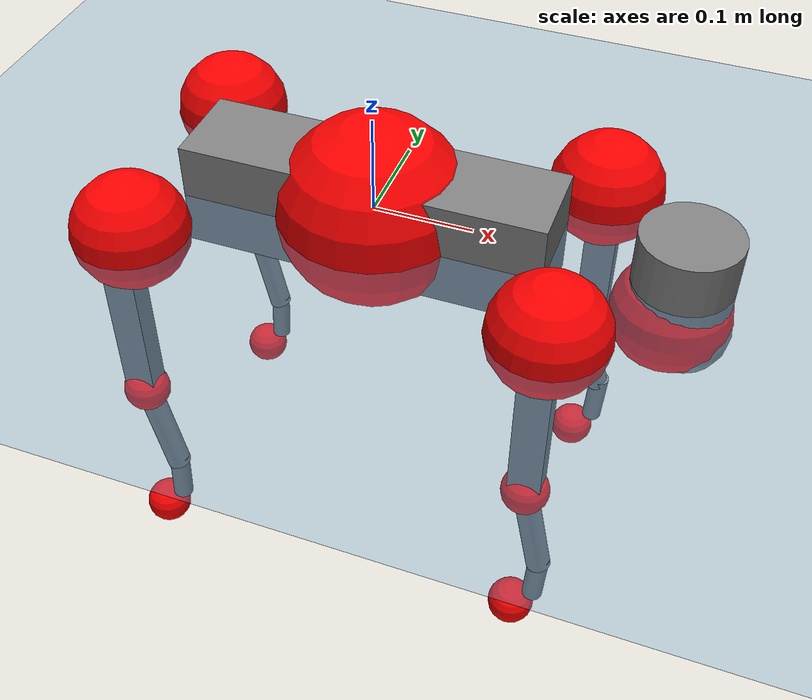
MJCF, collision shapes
<mujoco model="go2">
  <compiler angle="radian" assetdir="assets" balanceinertia="true" inertiafromgeom="false"/>

  <option timestep="0.005" density="1.2" viscosity="2e-05"/>

  <size nkey="1"/>

  <visual>
    <quality shadowsize="8192"/>
    <map shadowclip="0.5"/>
  </visual>

  <default>
    <default class="/">
      <geom contype="0" conaffinity="0" group="1" solref="-1000 -80"/>
      <site size="0.01 0.005 0.005" group="5"/>
      <general forcelimited="true" biastype="affine" gainprm="20" biasprm="0 -20 -0.5"/>
      <default class="go2">
        <joint armature="0.01" damping="0.01" frictionloss="0.2"/>
        <geom condim="1" margin="0.001"/>
        <default class="visual">
          <geom type="mesh" group="2"/>
        </default>
        <default class="collision">
          <geom group="3"/>
          <default class="foot">
            <geom size="0.022 0 0" condim="6" priority="1" friction="0.8 0.02 0.01" solimp="0.015 1 0.022"/>
          </default>
        </default>
        <default class="reward_collision_sphere">
          <geom group="5" rgba="1 0 0 1"/>
        </default>
      </default>
    </default>
  </default>

  <asset>
    <texture type="skybox" colorspace="auto" name="//unnamed_texture_0" builtin="gradient" rgb1="0.95 0.95 0.95" rgb2="0.95 0.95 0.95" width="100" height="600"/>
    <texture type="2d" colorspace="auto" name="texplane" builtin="checker" rgb1="0.345 0.575 0.748" rgb2="0.345 0.575 0.748" markrgb="1 1 1" width="512" height="512"/>
    <material name="MatPlane" class="/" texture="texplane" texuniform="true" texrepeat="2 2" specular="0.9"/>
    <material name="metal" class="/" rgba="0.9 0.95 0.95 1"/>
    <material name="black" class="/" rgba="0 0 0 1"/>
    <material name="white" class="/"/>
    <material name="gray" class="/" rgba="0.671705 0.692426 0.77427 1"/>
    <mesh name="base_0" class="/" file="base_0.obj"/>
    <mesh name="base_1" class="/" file="base_1.obj"/>
    <mesh name="base_2" class="/" file="base_2.obj"/>
    <mesh name="base_3" class="/" file="base_3.obj"/>
    <mesh name="base_4" class="/" file="base_4.obj"/>
    <mesh name="hip_0" class="/" file="hip_0.obj"/>
    <mesh name="hip_1" class="/" file="hip_1.obj"/>
    <mesh name="thigh_0" class="/" file="thigh_0.obj"/>
    <mesh name="thigh_1" class="/" file="thigh_1.obj"/>
    <mesh name="thigh_mirror_0" class="/" file="thigh_mirror_0.obj"/>
    <mesh name="thigh_mirror_1" class="/" file="thigh_mirror_1.obj"/>
    <mesh name="calf_0" class="/" file="calf_0.obj"/>
    <mesh name="calf_1" class="/" file="calf_1.obj"/>
    <mesh name="calf_mirror_0" class="/" file="calf_mirror_0.obj"/>
    <mesh name="calf_mirror_1" class="/" file="calf_mirror_1.obj"/>
    <mesh name="foot" class="/" file="foot.obj"/>
  </asset>

  <worldbody>
    <geom name="floor" class="/" size="100 100 0.125" type="plane" group="0" material="MatPlane"/>
    <light name="toplight_shadow" class="/" pos="0 0 5" dir="0.0990148 0.0990148 -0.990148" type="directional" ambient="0.04 0.04 0.04" diffuse="0.55 0.55 0.55" specular="0.12 0.12 0.12"/>
    <light name="toplight_fill" class="/" pos="0 0 5" dir="0.0990148 0.0990148 -0.990148" type="directional" castshadow="false" ambient="0.04 0.04 0.04" diffuse="0.3 0.3 0.3" specular="0.08 0.08 0.08"/>
    <body name="trunk" childclass="go2" pos="-6.01191e-05 -0.00012301 -0.000286898" quat="1 1.33462e-05 -2.1962e-05 -2.12245e-05">
      <inertial pos="0.0223798 -0.000333747 -0.00492874" quat="-0.00128834 0.713597 -0.00228504 0.700552" mass="6.34584" diaginertia="0.142345 0.0748469 0.0140874"/>
      <joint name="//unnamed_joint_0" type="free" armature="0" damping="0" frictionloss="0"/>
      <geom name="//unnamed_geom_1" class="visual" material="black" mesh="base_0"/>
      <geom name="//unnamed_geom_2" class="visual" material="black" mesh="base_1"/>
      <geom name="//unnamed_geom_3" class="visual" material="black" mesh="base_2"/>
      <geom name="//unnamed_geom_4" class="visual" material="white" mesh="base_3"/>
      <geom name="//unnamed_geom_5" class="visual" material="gray" mesh="base_4"/>
      <geom name="trunk_1" class="collision" size="0.181766 0.0451758 0.0550807" type="box"/>
      <geom name="trunk_2" class="collision" size="0.0483164 0.0434847" pos="0.301275 0 0.0089465" type="cylinder"/>
      <geom name="trunk_3" class="collision" size="0.0454174" pos="0.309732 0 -0.053679"/>
      <geom name="//unnamed_geom_9" class="reward_collision_sphere" size="0.0966328"/>
      <geom name="//unnamed_geom_10" class="reward_collision_sphere" size="0.0579797" pos="0.295989 0 -0.0402592"/>
      <site name="imu" pos="-0.0251483 -0.00392406 0.0415072" size="0.00966328"/>
      <camera name="track" pos="0 -1.89446 0" quat="0.707107 0.707107 0 0" mode="trackcom"/>
      <camera name="ego_camera" pos="0.329817 0 0.0402592" quat="-0.5 -0.5 0.5 0.5"/>
      <body name="FL_hip" pos="0.204266 0.0433583 0.00123622" quat="1 0.000155216 -3.21271e-05 4.99966e-05">
        <inertial pos="-0.00522385 0.00230342 -0.000951198" quat="0.496687 0.498725 0.505557 0.498986" mass="0.617801" diaginertia="0.00116596 0.00045649 0.000277724"/>
        <joint name="FL_hip_joint" pos="0 0 0" axis="1 0.000543876 0.000365088" stiffness="0.003253" range="-1.04638 1.03633" armature="0.00962991" damping="0.00821422" frictionloss="0.187048"/>
        <geom name="//unnamed_geom_11" class="visual" material="metal" mesh="hip_0"/>
        <geom name="//unnamed_geom_12" class="visual" material="gray" mesh="hip_1"/>
        <geom name="//unnamed_geom_13" class="collision" size="0.0444511 0.0193266" pos="0 0.0757783 0" quat="0.707107 0.707107 0 0" type="cylinder"/>
        <geom name="//unnamed_geom_14" class="reward_collision_sphere" size="0.0579797" pos="0 0.066306 0"/>
        <body name="FL_thigh" pos="-5.12109e-05 0.0897274 0.00168733" quat="1 8.51804e-05 6.57945e-05 3.57929e-06">
          <inertial pos="-0.00387044 -0.0210084 -0.0289986" quat="0.830351 0.0846303 -0.0199169 0.550416" mass="1.05116" diaginertia="0.00793714 0.00447546 0.000510436"/>
          <joint name="FL_thigh_joint" pos="0 0 0" axis="-0.00400628 0.999992 -1.50767e-05" stiffness="0.00363805" range="-1.55592 3.49229" armature="0.0100223" damping="0.00248765" frictionloss="0.192995"/>
          <geom name="//unnamed_geom_15" class="visual" material="metal" mesh="thigh_0"/>
          <geom name="//unnamed_geom_16" class="visual" material="gray" mesh="thigh_1"/>
          <geom name="//unnamed_geom_17" class="collision" size="0.102914 0.0118375 0.0164276" pos="0 0 -0.0952802" quat="0.707107 0 0.707107 0" type="box"/>
          <body name="FL_calf" pos="-0.000870497 3.02076e-05 -0.190316" quat="1 8.53163e-05 -7.05705e-06 -5.29871e-06">
            <inertial pos="0.00601235 -0.000420346 -0.126242" quat="0.710262 0.00184395 -0.00456582 0.70392" mass="0.217799" diaginertia="0.00197039 0.00111238 3.04876e-05"/>
            <joint name="FL_calf_joint" pos="0 0 0" axis="-0.00239949 0.999985 -0.00495642" stiffness="0.00393441" range="-2.73889 -0.854153" armature="0.00943917" damping="0.00652508" frictionloss="0.197533"/>
            <geom name="//unnamed_geom_18" class="visual" material="gray" mesh="calf_0"/>
            <geom name="//unnamed_geom_19" class="visual" material="black" mesh="calf_1"/>
            <geom name="FL_calf0" class="collision" size="0.0115959 0.0579797" pos="0.00845684 0 -0.053679" quat="0.994493 0 -0.104807 0" type="cylinder"/>
            <geom name="//unnamed_geom_21" class="collision" size="0.0106296 0.0314056" pos="0.0211421 0 -0.132408" quat="0.999688 0 0.0249974 0" type="cylinder"/>
            <geom name="//unnamed_geom_22" class="visual" pos="0 0 -0.19056" quat="1 0 0 0" material="black" mesh="foot"/>
            <geom name="FL_foot" class="foot" size="0.0175537" pos="-0.00211421 0 -0.19056"/>
            <geom name="//unnamed_geom_24" class="reward_collision_sphere" size="0.0241582"/>
            <geom name="//unnamed_geom_25" class="reward_collision_sphere" size="0.0241582" pos="-0.00211421 0 -0.19056"/>
            <site name="FL_foot" class="foot" pos="-0.00211421 0 -0.19056" size="0.00966328"/>
          </body>
        </body>
      </body>
      <body name="FR_hip" pos="0.204795 -0.0430355 -5.43092e-05" quat="1 -0.000202564 -0.000180107 -1.08495e-05">
        <inertial pos="-0.00579649 -0.0016315 -0.000467896" quat="0.496858 0.506579 0.499646 0.496854" mass="0.61211" diaginertia="0.00116669 0.000451551 0.000274152"/>
        <joint name="FR_hip_joint" pos="0 0 0" axis="0.999999 -0.00123424 0.000476541" range="-1.05292 1.06373" armature="0.009876" damping="0.0156662" frictionloss="0.184981"/>
        <geom name="//unnamed_geom_26" class="visual" pos="0 4.58043e-10 1.96464e-08" quat="4.63268e-05 1 0 0" material="metal" mesh="hip_0"/>
        <geom name="//unnamed_geom_27" class="visual" pos="0 7.42543e-10 -4.85931e-08" quat="4.63268e-05 1 0 0" material="gray" mesh="hip_1"/>
        <geom name="//unnamed_geom_28" class="collision" size="0.0444511 0.0193266" pos="0 -0.0757783 0" quat="0.707107 0.707107 0 0" type="cylinder"/>
        <geom name="//unnamed_geom_29" class="reward_collision_sphere" size="0.0579797" pos="0 -0.066306 0"/>
        <body name="FR_thigh" pos="0.000246995 -0.0894471 0.00138895" quat="1 -0.00016087 9.52401e-05 0.000188416">
          <inertial pos="-0.0042335 0.0213442 -0.0291436" quat="0.552985 -0.0193751 0.0835459 0.828765" mass="1.02925" diaginertia="0.00784923 0.0044888 0.000501604"/>
          <joint name="FR_thigh_joint" pos="0 0 0" axis="-0.00443073 -0.999984 0.00363416" range="-3.49251 1.58588" armature="0.00981568" damping="0.00897086" frictionloss="0.20023"/>
          <geom name="//unnamed_geom_30" class="visual" material="metal" mesh="thigh_mirror_0"/>
          <geom name="//unnamed_geom_31" class="visual" material="gray" mesh="thigh_mirror_1"/>
          <geom name="//unnamed_geom_32" class="collision" size="0.102914 0.0118375 0.0164276" pos="0 0 -0.0952802" quat="0.707107 0 0.707107 0" type="box"/>
          <body name="FR_calf" pos="-0.000130863 0.000367119 -0.190777" quat="1 0.000100089 -0.000125628 -0.000128054">
            <inertial pos="0.00608084 0.000914868 -0.127322" quat="0.702023 -0.00477149 0.00322805 0.712131" mass="0.217633" diaginertia="0.00197677 0.0011127 3.08352e-05"/>
            <joint name="FR_calf_joint" pos="0 0 0" axis="-0.00152314 -0.999986 -0.00497189" range="0.831947 2.72696" armature="0.00974725" damping="0.0071882" frictionloss="0.198436"/>
            <geom name="//unnamed_geom_33" class="visual" material="gray" mesh="calf_mirror_0"/>
            <geom name="//unnamed_geom_34" class="visual" material="black" mesh="calf_mirror_1"/>
            <geom name="FR_calf0" class="collision" size="0.0125623 0.0579797" pos="0.010571 0 -0.053679" quat="0.995004 0 -0.0998334 0" type="cylinder"/>
            <geom name="//unnamed_geom_36" class="collision" size="0.0106296 0.0314056" pos="0.0211421 0 -0.132408" quat="0.999688 0 0.0249974 0" type="cylinder"/>
            <geom name="//unnamed_geom_37" class="visual" pos="0 0 -0.19056" quat="1 0 0 0" material="black" mesh="foot"/>
            <geom name="FR_foot" class="foot" size="0.0212644" pos="-0.00211421 0 -0.19056"/>
            <geom name="//unnamed_geom_39" class="reward_collision_sphere" size="0.0241582"/>
            <geom name="//unnamed_geom_40" class="reward_collision_sphere" size="0.0241582" pos="-0.00211421 0 -0.19056"/>
            <site name="FR_foot" class="foot" pos="-0.00211421 0 -0.19056" size="0.00966328"/>
          </body>
        </body>
      </body>
      <body name="RL_hip" pos="-0.20466 0.044802 0.000444146" quat="1 2.67338e-05 1.48224e-05 1.7439e-06">
        <inertial pos="0.00535529 0.00259399 -0.000305985" quat="0.505648 0.49836 0.496729 0.499217" mass="0.61919" diaginertia="0.00118556 0.000458244 0.000280379"/>
        <joint name="RL_hip_joint" pos="0 0 0" axis="-0.9998 -0.00193684 -0.0198803" stiffness="0.00267412" range="-1.04039 1.04314" armature="0.00941455" damping="0.0123298" frictionloss="0.193588"/>
        <geom name="//unnamed_geom_41" class="visual" pos="-1.41524e-09 0 -2.7742e-07" quat="4.63268e-05 0 1 0" material="metal" mesh="hip_0"/>
        <geom name="//unnamed_geom_42" class="visual" pos="-2.29428e-09 0 -2.46032e-07" quat="4.63268e-05 0 1 0" material="gray" mesh="hip_1"/>
        <geom name="//unnamed_geom_43" class="collision" size="0.0444511 0.0193266" pos="0 0.0757783 0" quat="0.707107 0.707107 0 0" type="cylinder"/>
        <geom name="//unnamed_geom_44" class="reward_collision_sphere" size="0.0579797" pos="0 0.066306 0"/>
        <body name="RL_thigh" pos="-0.000216684 0.0899457 0.000705954" quat="1 0.000131289 -0.00035431 -0.00012805">
          <inertial pos="-0.0032836 -0.020081 -0.0297047" quat="0.829568 0.0847842 -0.0200241 0.551568" mass="1.05082" diaginertia="0.00791909 0.00449904 0.000502715"/>
          <joint name="RL_thigh_joint" pos="0 0 0" axis="-0.000148111 0.999987 -0.00513558" range="-0.505922 4.53828" armature="0.00966791" damping="0.00152831" frictionloss="0.189631"/>
          <geom name="//unnamed_geom_45" class="visual" material="metal" mesh="thigh_0"/>
          <geom name="//unnamed_geom_46" class="visual" material="gray" mesh="thigh_1"/>
          <geom name="//unnamed_geom_47" class="collision" size="0.102914 0.0118375 0.0164276" pos="0 0 -0.0952802" quat="0.707107 0 0.707107 0" type="box"/>
          <body name="RL_calf" pos="0.000445729 -0.000724946 -0.189896" quat="1 -4.5874e-05 0.000472271 7.53153e-06">
            <inertial pos="0.0064271 -0.00128244 -0.127081" quat="0.710744 0.00185288 -0.00346501 0.70344" mass="0.219634" diaginertia="0.00199058 0.00113637 3.06843e-05"/>
            <joint name="RL_calf_joint" pos="0 0 0" axis="0.0108615 0.999936 0.00318504" range="-2.71947 -0.851132" armature="0.0095212" damping="0" frictionloss="0.193119"/>
            <geom name="//unnamed_geom_48" class="visual" material="gray" mesh="calf_0"/>
            <geom name="//unnamed_geom_49" class="visual" material="black" mesh="calf_1"/>
            <geom name="RL_calf0" class="collision" size="0.0125623 0.0579797" pos="0.010571 0 -0.053679" quat="0.995004 0 -0.0998334 0" type="cylinder"/>
            <geom name="//unnamed_geom_51" class="collision" size="0.0106296 0.0314056" pos="0.0211421 0 -0.132408" quat="0.999688 0 0.0249974 0" type="cylinder"/>
            <geom name="//unnamed_geom_52" class="visual" pos="0 0 -0.19056" quat="1 0 0 0" material="black" mesh="foot"/>
            <geom name="RL_foot" class="foot" size="0.0188082" pos="-0.00211421 0 -0.19056"/>
            <geom name="//unnamed_geom_54" class="reward_collision_sphere" size="0.0241582"/>
            <geom name="//unnamed_geom_55" class="reward_collision_sphere" size="0.0241582" pos="-0.00211421 0 -0.19056"/>
            <site name="RL_foot" class="foot" pos="-0.00211421 0 -0.19056" size="0.00966328"/>
          </body>
        </body>
      </body>
      <body name="RR_hip" pos="-0.20414 -0.0453755 0.000863013" quat="1 1.38716e-05 2.3003e-05 -1.71552e-05">
        <inertial pos="0.00636901 -0.00106443 -0.000294336" quat="0.49965 0.496868 0.49767 0.505764" mass="0.608493" diaginertia="0.00117172 0.000457208 0.000273826"/>
        <joint name="RR_hip_joint" pos="0 0 0" axis="-0.999995 0.0029847 -0.000728868" range="-1.03978 1.04784" armature="0.00964195" damping="0.00335068" frictionloss="0.198892"/>
        <geom name="//unnamed_geom_56" class="visual" pos="1.41144e-09 4.58043e-10 -2.97067e-07" quat="2.14617e-09 4.63268e-05 4.63268e-05 -1" material="metal" mesh="hip_0"/>
        <geom name="//unnamed_geom_57" class="visual" pos="2.30369e-09 7.42543e-10 -1.97439e-07" quat="2.14617e-09 4.63268e-05 4.63268e-05 -1" material="gray" mesh="hip_1"/>
        <geom name="//unnamed_geom_58" class="collision" size="0.0444511 0.0193266" pos="0 -0.0757783 0" quat="0.707107 0.707107 0 0" type="cylinder"/>
        <geom name="//unnamed_geom_59" class="reward_collision_sphere" size="0.0579797" pos="0 -0.066306 0"/>
        <body name="RR_thigh" pos="-0.000326215 -0.0913928 -0.00130897" quat="1 -0.000457654 7.79494e-05 7.37067e-05">
          <inertial pos="-0.00384096 0.0214662 -0.0302625" quat="0.550139 -0.0213716 0.0811407 0.830847" mass="1.02893" diaginertia="0.00777769 0.00443179 0.000504652"/>
          <joint name="RR_thigh_joint" pos="0 0 0" axis="-0.000591045 -1 -0.000345262" range="-4.54036 0.540328" armature="0.00965965" damping="0.0193827" frictionloss="0.188817"/>
          <geom name="//unnamed_geom_60" class="visual" material="metal" mesh="thigh_mirror_0"/>
          <geom name="//unnamed_geom_61" class="visual" material="gray" mesh="thigh_mirror_1"/>
          <geom name="//unnamed_geom_62" class="collision" size="0.102914 0.0118375 0.0164276" pos="0 0 -0.0952802" quat="0.707107 0 0.707107 0" type="box"/>
          <body name="RR_calf" pos="0.00124185 -0.00101539 -0.191369" quat="1 0.000124537 -5.19874e-05 -0.000190593">
            <inertial pos="0.00682121 0.000711879 -0.126895" quat="0.703457 -0.00531003 0.00148799 0.710716" mass="0.214487" diaginertia="0.00194152 0.00109564 3.01606e-05"/>
            <joint name="RR_calf_joint" pos="0 0 0" axis="-0.000584455 -0.999983 0.0058543" range="0.830407 2.71638" armature="0.00964625" damping="0.00772698" frictionloss="0.189059"/>
            <geom name="//unnamed_geom_63" class="visual" material="gray" mesh="calf_mirror_0"/>
            <geom name="//unnamed_geom_64" class="visual" material="black" mesh="calf_mirror_1"/>
            <geom name="RR_calf0" class="collision" size="0.0125623 0.0579797" pos="0.010571 0 -0.053679" quat="0.995004 0 -0.0998334 0" type="cylinder"/>
            <geom name="//unnamed_geom_66" class="collision" size="0.0106296 0.0314056" pos="0.0211421 0 -0.132408" quat="0.999688 0 0.0249974 0" type="cylinder"/>
            <geom name="//unnamed_geom_67" class="visual" pos="0 0 -0.19056" quat="1 0 0 0" material="black" mesh="foot"/>
            <geom name="RR_foot" class="foot" size="0.0220548" pos="-0.00211421 0 -0.19056"/>
            <geom name="//unnamed_geom_69" class="reward_collision_sphere" size="0.0241582"/>
            <geom name="//unnamed_geom_70" class="reward_collision_sphere" size="0.0241582" pos="-0.00211421 0 -0.19056"/>
            <site name="RR_foot" class="foot" pos="-0.00211421 0 -0.19056" size="0.00966328"/>
          </body>
        </body>
      </body>
    </body>
  </worldbody>

  <contact>
    <pair class="/" geom1="floor" geom2="FL_foot" name="//unnamed_contact_0"/>
    <pair class="/" geom1="floor" geom2="FR_foot" name="//unnamed_contact_1"/>
    <pair class="/" geom1="floor" geom2="RL_foot" name="//unnamed_contact_2"/>
    <pair class="/" geom1="floor" geom2="RR_foot" name="//unnamed_contact_3"/>
  </contact>

  <actuator>
    <general name="FL_hip" class="/" joint="FL_hip_joint" forcerange="-22.7347 22.7347" gainprm="19.6331" biasprm="0 -19.6331 -0.480326"/>
    <general name="FL_thigh" class="/" joint="FL_thigh_joint" forcerange="-23.1465 23.1465" gainprm="19.6331" biasprm="0 -19.6331 -0.480326"/>
    <general name="FL_calf" class="/" joint="FL_calf_joint" forcerange="-42.4147 42.4147" gainprm="19.6331" biasprm="0 -19.6331 -0.480326"/>
    <general name="FR_hip" class="/" joint="FR_hip_joint" forcerange="-22.6277 22.6277" gainprm="19.6331" biasprm="0 -19.6331 -0.480326"/>
    <general name="FR_thigh" class="/" joint="FR_thigh_joint" forcerange="-22.2069 22.2069" gainprm="19.6331" biasprm="0 -19.6331 -0.480326"/>
    <general name="FR_calf" class="/" joint="FR_calf_joint" forcerange="-43.6684 43.6684" gainprm="19.6331" biasprm="0 -19.6331 -0.480326"/>
    <general name="RL_hip" class="/" joint="RL_hip_joint" forcerange="-22.7758 22.7758" gainprm="19.6331" biasprm="0 -19.6331 -0.480326"/>
    <general name="RL_thigh" class="/" joint="RL_thigh_joint" forcerange="-22.7628 22.7628" gainprm="19.6331" biasprm="0 -19.6331 -0.480326"/>
    <general name="RL_calf" class="/" joint="RL_calf_joint" forcerange="-43.3535 43.3535" gainprm="19.6331" biasprm="0 -19.6331 -0.480326"/>
    <general name="RR_hip" class="/" joint="RR_hip_joint" forcerange="-22.942 22.942" gainprm="19.6331" biasprm="0 -19.6331 -0.480326"/>
    <general name="RR_thigh" class="/" joint="RR_thigh_joint" forcerange="-22.812 22.812" gainprm="19.6331" biasprm="0 -19.6331 -0.480326"/>
    <general name="RR_calf" class="/" joint="RR_calf_joint" forcerange="-42.6329 42.6329" gainprm="19.6331" biasprm="0 -19.6331 -0.480326"/>
  </actuator>

  <sensor>
    <gyro site="imu" name="imu_angular_velocity"/>
    <velocimeter site="imu" name="imu_linear_velocity"/>
    <framelinvel objtype="site" objname="FL_foot" name="FL_foot_global_linear_velocity"/>
    <framelinvel objtype="site" objname="FR_foot" name="FR_foot_global_linear_velocity"/>
    <framelinvel objtype="site" objname="RL_foot" name="RL_foot_global_linear_velocity"/>
    <framelinvel objtype="site" objname="RR_foot" name="RR_foot_global_linear_velocity"/>
  </sensor>

  <keyframe>
    <key name="home" qpos="0 0 0.325 1 0 0 0 0.1 0.8 -1.5 -0.1 -0.8 1.5 -0.1 0.8 -1.5 0.1 -0.8 1.5"/>
  </keyframe>
</mujoco>
